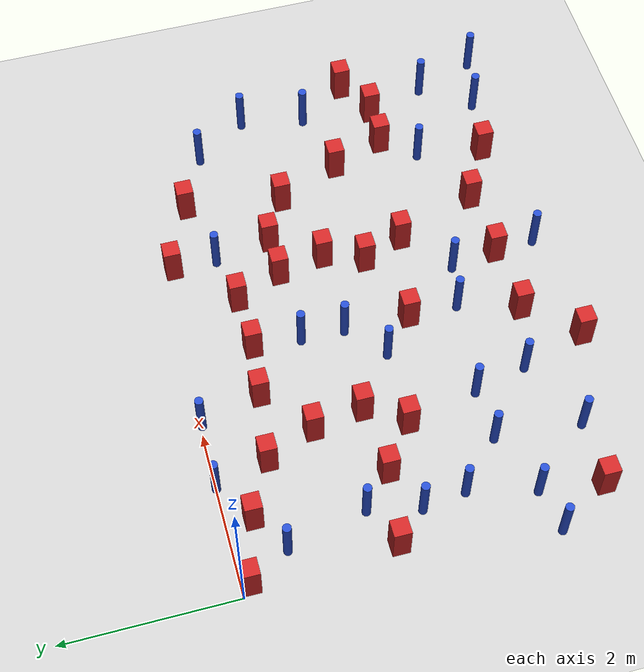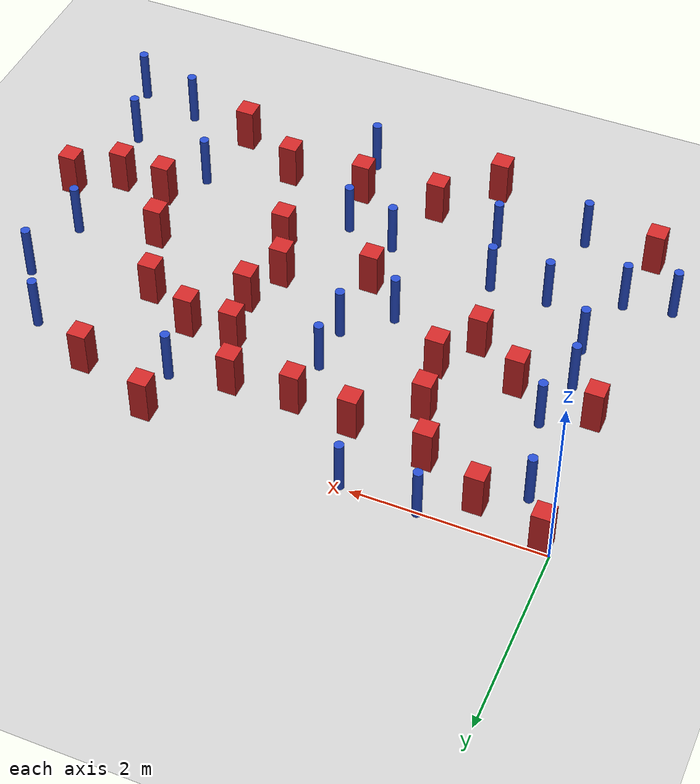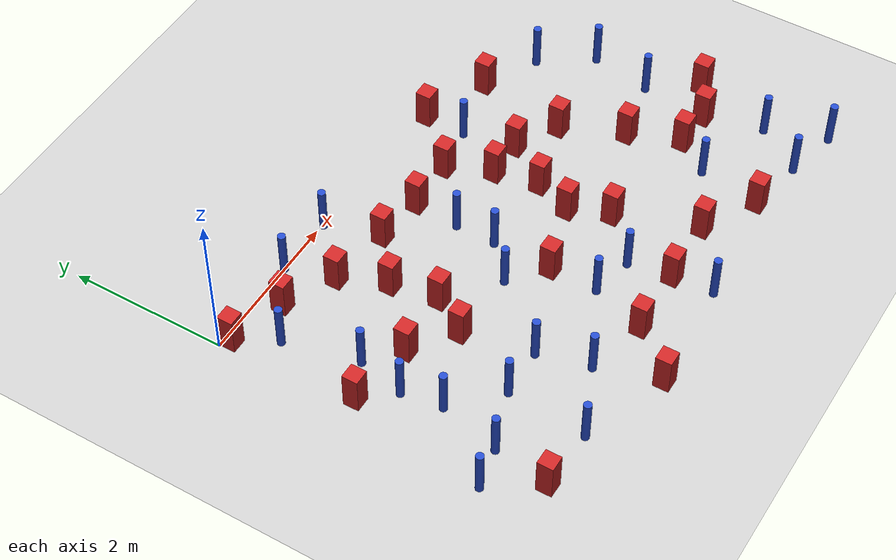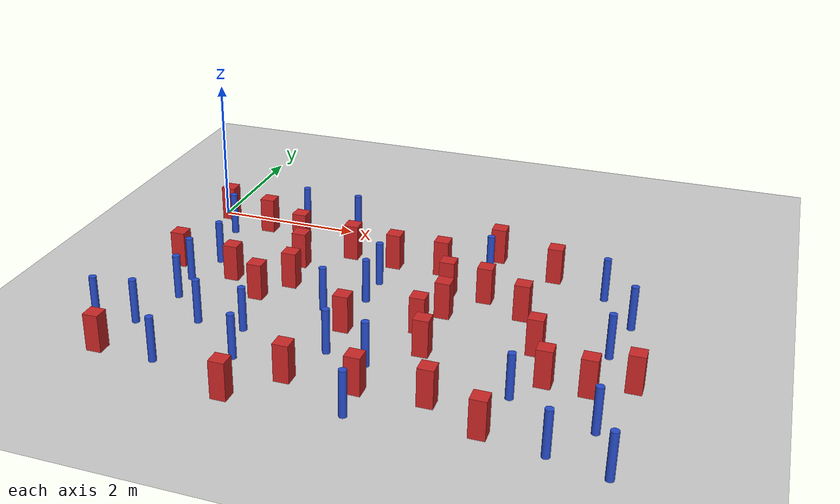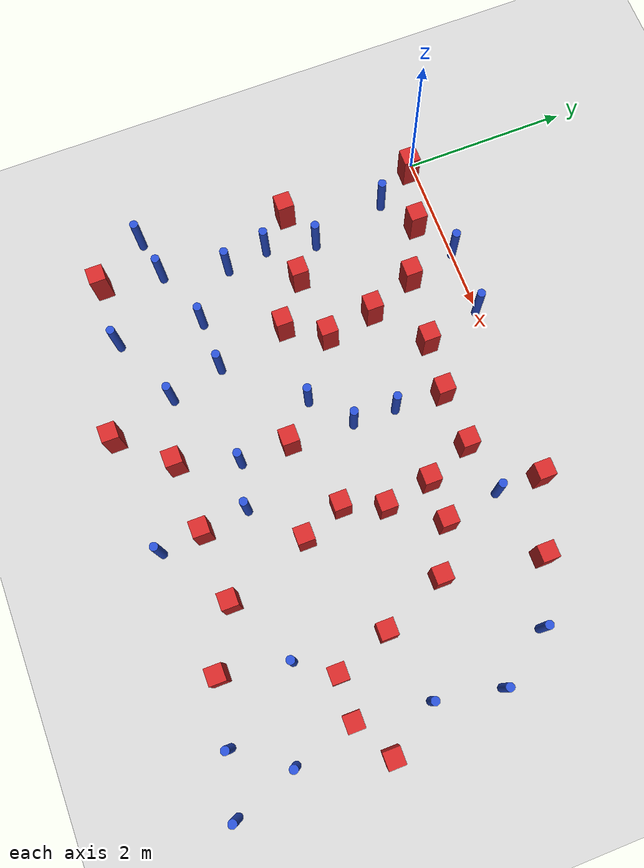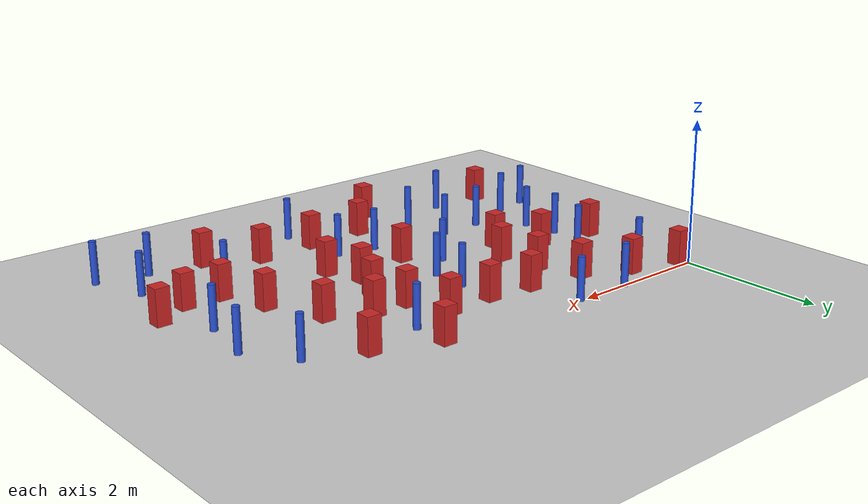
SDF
<sdf version="1.6">
 <world name="default">
  <model name="ground_plane">
   <static>1</static>
   <link name="link">
    <collision name="collision">
     <geometry><plane><normal>0 0 1</normal><size>100 100</size></plane></geometry>
     <surface><friction><ode><mu>100</mu><mu2>50</mu2></ode></friction></surface>
    </collision>
    <visual name="visual">
     <cast_shadows>0</cast_shadows>
     <geometry><plane><normal>0 0 1</normal><size>100 100</size></plane></geometry>
     <material>
      <ambient>1.0 1.0 1.0 1.0</ambient>
      <diffuse>0.8 0.8 0.8 1.0</diffuse>
      <specular>0.01 0.01 0.01 1.000000</specular>
     </material>
    </visual>
   </link>
  </model>
  <model name="square_post_obstacle0">
   <static>true</static>
   <pose>3.85664924931 -1.35110798429 -6.11067671241e-07 -5.50515727128e-06 -8.79689657224e-07 2.37013304536e-05</pose>
   <link name="link">
    <pose>0 0 0.25 0 -0 0</pose>
    <inertial>
     <mass>100</mass>
     <inertia>
      <ixx>0.166667</ixx>
      <ixy>0</ixy>
      <ixz>0</ixz>
      <iyy>0.166667</iyy>
      <iyz>0</iyz>
      <izz>0.166667</izz>
     </inertia>
    </inertial>
    <collision name="collision"><geometry><box><size>.2 .2 .5</size></box></geometry></collision>
    <visual name="visual">
     <geometry><box><size>.2 .2 .5</size></box></geometry>
     <material>
      <script><name>Gazebo/Red</name><uri>file://media/materials/scripts/gazebo.material</uri></script>
     </material>
    </visual>
   </link>
  </model>
  <model name="square_post_obstacle2">
   <static>true</static>
   <pose>0.250513682666 -4.11125388289 -6.11067671241e-07 -5.50515727128e-06 -8.79689657224e-07 2.37013304536e-05</pose>
   <link name="link">
    <pose>0 0 0.25 0 -0 0</pose>
    <inertial>
     <mass>100</mass>
     <inertia>
      <ixx>0.166667</ixx>
      <ixy>0</ixy>
      <ixz>0</ixz>
      <iyy>0.166667</iyy>
      <iyz>0</iyz>
      <izz>0.166667</izz>
     </inertia>
    </inertial>
    <collision name="collision"><geometry><box><size>.2 .2 .5</size></box></geometry></collision>
    <visual name="visual">
     <geometry><box><size>.2 .2 .5</size></box></geometry>
     <material>
      <script><name>Gazebo/Red</name><uri>file://media/materials/scripts/gazebo.material</uri></script>
     </material>
    </visual>
   </link>
  </model>
  <model name="pole_obstacle2">
   <static>true</static>
   <pose>2.89271784255 -3.2723165584 -9.47619616065e-06 5.49618799737e-07 2.36310414051e-07 -1.55090534807e-07</pose>
   <link name="link">
    <pose>0 0 0.3 0 -0 0</pose>
    <inertial>
     <mass>1</mass>
     <inertia><ixx>0.145833</ixx><ixy>0</ixy><ixz>0</ixz><iyy>0.145833</iyy><iyz>0</iyz><izz>0.125</izz></inertia>
    </inertial>
    <collision name="collision">
     <geometry><cylinder><radius>0.05</radius><length>.6</length></cylinder></geometry>
    </collision>
    <visual name="visual">
     <geometry><cylinder><radius>0.05</radius><length>.6</length></cylinder></geometry>
     <material>
      <script><name>Gazebo/Blue</name><uri>file://media/materials/scripts/gazebo.material</uri></script>
     </material>
    </visual>
   </link>
  </model>
  <model name="pole_obstacle3">
   <static>true</static>
   <pose>5.82433210495 -0.820208109112 -9.47619616065e-06 5.49618799737e-07 2.36310414061e-07 -1.550905348e-07</pose>
   <link name="link">
    <pose>0 0 0.3 0 -0 0</pose>
    <inertial>
     <mass>1</mass>
     <inertia><ixx>0.145833</ixx><ixy>0</ixy><ixz>0</ixz><iyy>0.145833</iyy><iyz>0</iyz><izz>0.125</izz></inertia>
    </inertial>
    <collision name="collision">
     <geometry><cylinder><radius>0.05</radius><length>.6</length></cylinder></geometry>
    </collision>
    <visual name="visual">
     <geometry><cylinder><radius>0.05</radius><length>.6</length></cylinder></geometry>
     <material>
      <script><name>Gazebo/Blue</name><uri>file://media/materials/scripts/gazebo.material</uri></script>
     </material>
    </visual>
   </link>
  </model>
  <model name="square_post_obstacle10">
   <static>true</static>
   <pose>3.7774740106 -2.39067848591 -6.11067671241e-07 -5.50515727128e-06 -8.79689657224e-07 2.37013304536e-05</pose>
   <link name="link">
    <pose>0 0 0.25 0 -0 0</pose>
    <inertial>
     <mass>100</mass>
     <inertia>
      <ixx>0.166667</ixx>
      <ixy>0</ixy>
      <ixz>0</ixz>
      <iyy>0.166667</iyy>
      <iyz>0</iyz>
      <izz>0.166667</izz>
     </inertia>
    </inertial>
    <collision name="collision"><geometry><box><size>.2 .2 .5</size></box></geometry></collision>
    <visual name="visual">
     <geometry><box><size>.2 .2 .5</size></box></geometry>
     <material>
      <script><name>Gazebo/Red</name><uri>file://media/materials/scripts/gazebo.material</uri></script>
     </material>
    </visual>
   </link>
  </model>
  <model name="square_post_obstacle16">
   <static>true</static>
   <pose>2.29833616412 -0.73261602999 -6.11067671241e-07 -5.50515727128e-06 -8.79689657224e-07 2.37013304536e-05</pose>
   <link name="link">
    <pose>0 0 0.25 0 -0 0</pose>
    <inertial>
     <mass>100</mass>
     <inertia>
      <ixx>0.166667</ixx>
      <ixy>0</ixy>
      <ixz>0</ixz>
      <iyy>0.166667</iyy>
      <iyz>0</iyz>
      <izz>0.166667</izz>
     </inertia>
    </inertial>
    <collision name="collision"><geometry><box><size>.2 .2 .5</size></box></geometry></collision>
    <visual name="visual">
     <geometry><box><size>.2 .2 .5</size></box></geometry>
     <material>
      <script><name>Gazebo/Red</name><uri>file://media/materials/scripts/gazebo.material</uri></script>
     </material>
    </visual>
   </link>
  </model>
  <model name="square_post_obstacle20">
   <static>true</static>
   <pose>1.71416534256 -1.20629454692 -6.11067671241e-07 -5.50515727128e-06 -8.79689657224e-07 2.37013304536e-05</pose>
   <link name="link">
    <pose>0 0 0.25 0 -0 0</pose>
    <inertial>
     <mass>100</mass>
     <inertia>
      <ixx>0.166667</ixx>
      <ixy>0</ixy>
      <ixz>0</ixz>
      <iyy>0.166667</iyy>
      <iyz>0</iyz>
      <izz>0.166667</izz>
     </inertia>
    </inertial>
    <collision name="collision"><geometry><box><size>.2 .2 .5</size></box></geometry></collision>
    <visual name="visual">
     <geometry><box><size>.2 .2 .5</size></box></geometry>
     <material>
      <script><name>Gazebo/Red</name><uri>file://media/materials/scripts/gazebo.material</uri></script>
     </material>
    </visual>
   </link>
  </model>
  <model name="pole_obstacle16">
   <static>true</static>
   <pose>0.621467730698 -1.51172817444 -9.47619616065e-06 5.49618799738e-07 2.36310414061e-07 -1.55090534801e-07</pose>
   <link name="link">
    <pose>0 0 0.3 0 -0 0</pose>
    <inertial>
     <mass>1</mass>
     <inertia><ixx>0.145833</ixx><ixy>0</ixy><ixz>0</ixz><iyy>0.145833</iyy><iyz>0</iyz><izz>0.125</izz></inertia>
    </inertial>
    <collision name="collision">
     <geometry><cylinder><radius>0.05</radius><length>.6</length></cylinder></geometry>
    </collision>
    <visual name="visual">
     <geometry><cylinder><radius>0.05</radius><length>.6</length></cylinder></geometry>
     <material>
      <script><name>Gazebo/Blue</name><uri>file://media/materials/scripts/gazebo.material</uri></script>
     </material>
    </visual>
   </link>
  </model>
  <model name="pole_obstacle20">
   <static>true</static>
   <pose>6.25953660881 -1.45709852853 -9.47619616065e-06 5.49618799738e-07 2.36310414071e-07 -1.55090534796e-07</pose>
   <link name="link">
    <pose>0 0 0.3 0 -0 0</pose>
    <inertial>
     <mass>1</mass>
     <inertia><ixx>0.145833</ixx><ixy>0</ixy><ixz>0</ixz><iyy>0.145833</iyy><iyz>0</iyz><izz>0.125</izz></inertia>
    </inertial>
    <collision name="collision">
     <geometry><cylinder><radius>0.05</radius><length>.6</length></cylinder></geometry>
    </collision>
    <visual name="visual">
     <geometry><cylinder><radius>0.05</radius><length>.6</length></cylinder></geometry>
     <material>
      <script><name>Gazebo/Blue</name><uri>file://media/materials/scripts/gazebo.material</uri></script>
     </material>
    </visual>
   </link>
  </model>
  <model name="pole_obstacle27">
   <static>true</static>
   <pose>3.55487759577 -4.44809324933 -9.47619616065e-06 5.49618799738e-07 2.3631041406e-07 -1.55090534801e-07</pose>
   <link name="link">
    <pose>0 0 0.3 0 -0 0</pose>
    <inertial>
     <mass>1</mass>
     <inertia><ixx>0.145833</ixx><ixy>0</ixy><ixz>0</ixz><iyy>0.145833</iyy><iyz>0</iyz><izz>0.125</izz></inertia>
    </inertial>
    <collision name="collision">
     <geometry><cylinder><radius>0.05</radius><length>.6</length></cylinder></geometry>
    </collision>
    <visual name="visual">
     <geometry><cylinder><radius>0.05</radius><length>.6</length></cylinder></geometry>
     <material>
      <script><name>Gazebo/Blue</name><uri>file://media/materials/scripts/gazebo.material</uri></script>
     </material>
    </visual>
   </link>
  </model>
  <model name="square_post_obstacle37">
   <static>true</static>
   <pose>3.9798996229 -2.89375919081 -6.11067671241e-07 -5.50515727128e-06 -8.79689657224e-07 2.37013304536e-05</pose>
   <link name="link">
    <pose>0 0 0.25 0 -0 0</pose>
    <inertial>
     <mass>100</mass>
     <inertia>
      <ixx>0.166667</ixx>
      <ixy>0</ixy>
      <ixz>0</ixz>
      <iyy>0.166667</iyy>
      <iyz>0</iyz>
      <izz>0.166667</izz>
     </inertia>
    </inertial>
    <collision name="collision"><geometry><box><size>.2 .2 .5</size></box></geometry></collision>
    <visual name="visual">
     <geometry><box><size>.2 .2 .5</size></box></geometry>
     <material>
      <script><name>Gazebo/Red</name><uri>file://media/materials/scripts/gazebo.material</uri></script>
     </material>
    </visual>
   </link>
  </model>
  <model name="square_post_obstacle39">
   <static>true</static>
   <pose>3.61675518051 -0.790493046692 -6.11067671241e-07 -5.50515727128e-06 -8.79689657224e-07 2.37013304536e-05</pose>
   <link name="link">
    <pose>0 0 0.25 0 -0 0</pose>
    <inertial>
     <mass>100</mass>
     <inertia>
      <ixx>0.166667</ixx>
      <ixy>0</ixy>
      <ixz>0</ixz>
      <iyy>0.166667</iyy>
      <iyz>0</iyz>
      <izz>0.166667</izz>
     </inertia>
    </inertial>
    <collision name="collision"><geometry><box><size>.2 .2 .5</size></box></geometry></collision>
    <visual name="visual">
     <geometry><box><size>.2 .2 .5</size></box></geometry>
     <material>
      <script><name>Gazebo/Red</name><uri>file://media/materials/scripts/gazebo.material</uri></script>
     </material>
    </visual>
   </link>
  </model>
  <model name="square_post_obstacle44">
   <static>true</static>
   <pose>4.36313292251 -1.35339043011 -6.11067671241e-07 -5.50515727128e-06 -8.79689657224e-07 2.37013304536e-05</pose>
   <link name="link">
    <pose>0 0 0.25 0 -0 0</pose>
    <inertial>
     <mass>100</mass>
     <inertia>
      <ixx>0.166667</ixx>
      <ixy>0</ixy>
      <ixz>0</ixz>
      <iyy>0.166667</iyy>
      <iyz>0</iyz>
      <izz>0.166667</izz>
     </inertia>
    </inertial>
    <collision name="collision"><geometry><box><size>.2 .2 .5</size></box></geometry></collision>
    <visual name="visual">
     <geometry><box><size>.2 .2 .5</size></box></geometry>
     <material>
      <script><name>Gazebo/Red</name><uri>file://media/materials/scripts/gazebo.material</uri></script>
     </material>
    </visual>
   </link>
  </model>
  <model name="square_post_obstacle48">
   <static>true</static>
   <pose>5.1028295144 -0.488186815445 -6.11067671241e-07 -5.50515727128e-06 -8.79689657224e-07 2.37013304536e-05</pose>
   <link name="link">
    <pose>0 0 0.25 0 -0 0</pose>
    <inertial>
     <mass>100</mass>
     <inertia>
      <ixx>0.166667</ixx>
      <ixy>0</ixy>
      <ixz>0</ixz>
      <iyy>0.166667</iyy>
      <iyz>0</iyz>
      <izz>0.166667</izz>
     </inertia>
    </inertial>
    <collision name="collision"><geometry><box><size>.2 .2 .5</size></box></geometry></collision>
    <visual name="visual">
     <geometry><box><size>.2 .2 .5</size></box></geometry>
     <material>
      <script><name>Gazebo/Red</name><uri>file://media/materials/scripts/gazebo.material</uri></script>
     </material>
    </visual>
   </link>
  </model>
  <model name="square_post_obstacle49">
   <static>true</static>
   <pose>3.9622819314 -1.91651674383 -6.11067671241e-07 -5.50515727128e-06 -8.79689657224e-07 2.37013304536e-05</pose>
   <link name="link">
    <pose>0 0 0.25 0 -0 0</pose>
    <inertial>
     <mass>100</mass>
     <inertia>
      <ixx>0.166667</ixx>
      <ixy>0</ixy>
      <ixz>0</ixz>
      <iyy>0.166667</iyy>
      <iyz>0</iyz>
      <izz>0.166667</izz>
     </inertia>
    </inertial>
    <collision name="collision"><geometry><box><size>.2 .2 .5</size></box></geometry></collision>
    <visual name="visual">
     <geometry><box><size>.2 .2 .5</size></box></geometry>
     <material>
      <script><name>Gazebo/Red</name><uri>file://media/materials/scripts/gazebo.material</uri></script>
     </material>
    </visual>
   </link>
  </model>
  <model name="pole_obstacle54">
   <static>true</static>
   <pose>1.72298742764 -3.11951811375 -9.47619616065e-06 5.49618799737e-07 2.36310414062e-07 -1.55090534798e-07</pose>
   <link name="link">
    <pose>0 0 0.3 0 -0 0</pose>
    <inertial>
     <mass>1</mass>
     <inertia><ixx>0.145833</ixx><ixy>0</ixy><ixz>0</ixz><iyy>0.145833</iyy><iyz>0</iyz><izz>0.125</izz></inertia>
    </inertial>
    <collision name="collision">
     <geometry><cylinder><radius>0.05</radius><length>.6</length></cylinder></geometry>
    </collision>
    <visual name="visual">
     <geometry><cylinder><radius>0.05</radius><length>.6</length></cylinder></geometry>
     <material>
      <script><name>Gazebo/Blue</name><uri>file://media/materials/scripts/gazebo.material</uri></script>
     </material>
    </visual>
   </link>
  </model>
  <model name="pole_obstacle61">
   <static>true</static>
   <pose>0.398044790497 -0.57646740134 -9.47619616065e-06 5.49618799737e-07 2.36310414061e-07 -1.550905348e-07</pose>
   <link name="link">
    <pose>0 0 0.3 0 -0 0</pose>
    <inertial>
     <mass>1</mass>
     <inertia><ixx>0.145833</ixx><ixy>0</ixy><ixz>0</ixz><iyy>0.145833</iyy><iyz>0</iyz><izz>0.125</izz></inertia>
    </inertial>
    <collision name="collision">
     <geometry><cylinder><radius>0.05</radius><length>.6</length></cylinder></geometry>
    </collision>
    <visual name="visual">
     <geometry><cylinder><radius>0.05</radius><length>.6</length></cylinder></geometry>
     <material>
      <script><name>Gazebo/Blue</name><uri>file://media/materials/scripts/gazebo.material</uri></script>
     </material>
    </visual>
   </link>
  </model>
  <model name="pole_obstacle64">
   <static>true</static>
   <pose>5.19068860532 -3.48503923548 -9.47619616065e-06 5.49618799738e-07 2.36310414051e-07 -1.55090534805e-07</pose>
   <link name="link">
    <pose>0 0 0.3 0 -0 0</pose>
    <inertial>
     <mass>1</mass>
     <inertia><ixx>0.145833</ixx><ixy>0</ixy><ixz>0</ixz><iyy>0.145833</iyy><iyz>0</iyz><izz>0.125</izz></inertia>
    </inertial>
    <collision name="collision">
     <geometry><cylinder><radius>0.05</radius><length>.6</length></cylinder></geometry>
    </collision>
    <visual name="visual">
     <geometry><cylinder><radius>0.05</radius><length>.6</length></cylinder></geometry>
     <material>
      <script><name>Gazebo/Blue</name><uri>file://media/materials/scripts/gazebo.material</uri></script>
     </material>
    </visual>
   </link>
  </model>
  <model name="pole_obstacle75">
   <static>true</static>
   <pose>6.21713978226 -3.82374724399 -9.47619616065e-06 5.49618799738e-07 2.36310414051e-07 -1.55090534805e-07</pose>
   <link name="link">
    <pose>0 0 0.3 0 -0 0</pose>
    <inertial>
     <mass>1</mass>
     <inertia><ixx>0.145833</ixx><ixy>0</ixy><ixz>0</ixz><iyy>0.145833</iyy><iyz>0</iyz><izz>0.125</izz></inertia>
    </inertial>
    <collision name="collision">
     <geometry><cylinder><radius>0.05</radius><length>.6</length></cylinder></geometry>
    </collision>
    <visual name="visual">
     <geometry><cylinder><radius>0.05</radius><length>.6</length></cylinder></geometry>
     <material>
      <script><name>Gazebo/Blue</name><uri>file://media/materials/scripts/gazebo.material</uri></script>
     </material>
    </visual>
   </link>
  </model>
  <model name="pole_obstacle77">
   <static>true</static>
   <pose>1.88730481213 -3.76330289041 -9.47619616065e-06 5.49618799737e-07 2.36310414062e-07 -1.55090534798e-07</pose>
   <link name="link">
    <pose>0 0 0.3 0 -0 0</pose>
    <inertial>
     <mass>1</mass>
     <inertia><ixx>0.145833</ixx><ixy>0</ixy><ixz>0</ixz><iyy>0.145833</iyy><iyz>0</iyz><izz>0.125</izz></inertia>
    </inertial>
    <collision name="collision">
     <geometry><cylinder><radius>0.05</radius><length>.6</length></cylinder></geometry>
    </collision>
    <visual name="visual">
     <geometry><cylinder><radius>0.05</radius><length>.6</length></cylinder></geometry>
     <material>
      <script><name>Gazebo/Blue</name><uri>file://media/materials/scripts/gazebo.material</uri></script>
     </material>
    </visual>
   </link>
  </model>
  <model name="pole_obstacle84">
   <static>true</static>
   <pose>3.4342140231 -3.38713158465 -9.47619616065e-06 5.49618799737e-07 2.36310414051e-07 -1.55090534807e-07</pose>
   <link name="link">
    <pose>0 0 0.3 0 -0 0</pose>
    <inertial>
     <mass>1</mass>
     <inertia><ixx>0.145833</ixx><ixy>0</ixy><ixz>0</ixz><iyy>0.145833</iyy><iyz>0</iyz><izz>0.125</izz></inertia>
    </inertial>
    <collision name="collision">
     <geometry><cylinder><radius>0.05</radius><length>.6</length></cylinder></geometry>
    </collision>
    <visual name="visual">
     <geometry><cylinder><radius>0.05</radius><length>.6</length></cylinder></geometry>
     <material>
      <script><name>Gazebo/Blue</name><uri>file://media/materials/scripts/gazebo.material</uri></script>
     </material>
    </visual>
   </link>
  </model>
  <model name="pole_obstacle86">
   <static>true</static>
   <pose>0.480580952328 -2.11062976343 -9.47619616065e-06 5.49618799738e-07 2.36310414066e-07 -1.55090534797e-07</pose>
   <link name="link">
    <pose>0 0 0.3 0 -0 0</pose>
    <inertial>
     <mass>1</mass>
     <inertia><ixx>0.145833</ixx><ixy>0</ixy><ixz>0</ixz><iyy>0.145833</iyy><iyz>0</iyz><izz>0.125</izz></inertia>
    </inertial>
    <collision name="collision">
     <geometry><cylinder><radius>0.05</radius><length>.6</length></cylinder></geometry>
    </collision>
    <visual name="visual">
     <geometry><cylinder><radius>0.05</radius><length>.6</length></cylinder></geometry>
     <material>
      <script><name>Gazebo/Blue</name><uri>file://media/materials/scripts/gazebo.material</uri></script>
     </material>
    </visual>
   </link>
  </model>
  <model name="pole_obstacle94">
   <static>true</static>
   <pose>4.25179372604 -0.675065789018 -9.47619616065e-06 5.49618799737e-07 2.36310414061e-07 -1.550905348e-07</pose>
   <link name="link">
    <pose>0 0 0.3 0 -0 0</pose>
    <inertial>
     <mass>1</mass>
     <inertia><ixx>0.145833</ixx><ixy>0</ixy><ixz>0</ixz><iyy>0.145833</iyy><iyz>0</iyz><izz>0.125</izz></inertia>
    </inertial>
    <collision name="collision">
     <geometry><cylinder><radius>0.05</radius><length>.6</length></cylinder></geometry>
    </collision>
    <visual name="visual">
     <geometry><cylinder><radius>0.05</radius><length>.6</length></cylinder></geometry>
     <material>
      <script><name>Gazebo/Blue</name><uri>file://media/materials/scripts/gazebo.material</uri></script>
     </material>
    </visual>
   </link>
  </model>
  <model name="square_post_obstacle83">
   <static>true</static>
   <pose>4.35001432819 -3.90132331806 -6.11067671241e-07 -5.50515727128e-06 -8.79689657224e-07 2.37013304536e-05</pose>
   <link name="link">
    <pose>0 0 0.25 0 -0 0</pose>
    <inertial>
     <mass>100</mass>
     <inertia>
      <ixx>0.166667</ixx>
      <ixy>0</ixy>
      <ixz>0</ixz>
      <iyy>0.166667</iyy>
      <iyz>0</iyz>
      <izz>0.166667</izz>
     </inertia>
    </inertial>
    <collision name="collision"><geometry><box><size>.2 .2 .5</size></box></geometry></collision>
    <visual name="visual">
     <geometry><box><size>.2 .2 .5</size></box></geometry>
     <material>
      <script><name>Gazebo/Red</name><uri>file://media/materials/scripts/gazebo.material</uri></script>
     </material>
    </visual>
   </link>
  </model>
  <model name="pole_obstacle100">
   <static>true</static>
   <pose>0.362005513536 -3.39597130784 -9.47619616065e-06 5.49618799738e-07 2.36310414065e-07 -1.55090534798e-07</pose>
   <link name="link">
    <pose>0 0 0.3 0 -0 0</pose>
    <inertial>
     <mass>1</mass>
     <inertia><ixx>0.145833</ixx><ixy>0</ixy><ixz>0</ixz><iyy>0.145833</iyy><iyz>0</iyz><izz>0.125</izz></inertia>
    </inertial>
    <collision name="collision">
     <geometry><cylinder><radius>0.05</radius><length>.6</length></cylinder></geometry>
    </collision>
    <visual name="visual">
     <geometry><cylinder><radius>0.05</radius><length>.6</length></cylinder></geometry>
     <material>
      <script><name>Gazebo/Blue</name><uri>file://media/materials/scripts/gazebo.material</uri></script>
     </material>
    </visual>
   </link>
  </model>
  <model name="square_post_obstacle93">
   <static>true</static>
   <pose>1.81769764011 -1.80596938682 -6.11067671241e-07 -5.50515727128e-06 -8.79689657224e-07 2.37013304536e-05</pose>
   <link name="link">
    <pose>0 0 0.25 0 -0 0</pose>
    <inertial>
     <mass>100</mass>
     <inertia>
      <ixx>0.166667</ixx>
      <ixy>0</ixy>
      <ixz>0</ixz>
      <iyy>0.166667</iyy>
      <iyz>0</iyz>
      <izz>0.166667</izz>
     </inertia>
    </inertial>
    <collision name="collision"><geometry><box><size>.2 .2 .5</size></box></geometry></collision>
    <visual name="visual">
     <geometry><box><size>.2 .2 .5</size></box></geometry>
     <material>
      <script><name>Gazebo/Red</name><uri>file://media/materials/scripts/gazebo.material</uri></script>
     </material>
    </visual>
   </link>
  </model>
  <model name="square_post_obstacle98">
   <static>true</static>
   <pose>5.49128685154 -3.06839703189 -6.11067671241e-07 -5.50515727128e-06 -8.79689657224e-07 2.37013304536e-05</pose>
   <link name="link">
    <pose>0 0 0.25 0 -0 0</pose>
    <inertial>
     <mass>100</mass>
     <inertia>
      <ixx>0.166667</ixx>
      <ixy>0</ixy>
      <ixz>0</ixz>
      <iyy>0.166667</iyy>
      <iyz>0</iyz>
      <izz>0.166667</izz>
     </inertia>
    </inertial>
    <collision name="collision"><geometry><box><size>.2 .2 .5</size></box></geometry></collision>
    <visual name="visual">
     <geometry><box><size>.2 .2 .5</size></box></geometry>
     <material>
      <script><name>Gazebo/Red</name><uri>file://media/materials/scripts/gazebo.material</uri></script>
     </material>
    </visual>
   </link>
  </model>
  <model name="pole_obstacle111">
   <static>true</static>
   <pose>-0.143401656528 -3.49465033572 -9.4761961606e-06 5.49618799729e-07 2.36310413997e-07 -1.55090534825e-07</pose>
   <link name="link">
    <pose>0 0 0.3 0 -0 0</pose>
    <inertial>
     <mass>1</mass>
     <inertia><ixx>0.145833</ixx><ixy>0</ixy><ixz>0</ixz><iyy>0.145833</iyy><iyz>0</iyz><izz>0.125</izz></inertia>
    </inertial>
    <collision name="collision">
     <geometry><cylinder><radius>0.05</radius><length>.6</length></cylinder></geometry>
    </collision>
    <visual name="visual">
     <geometry><cylinder><radius>0.05</radius><length>.6</length></cylinder></geometry>
     <material>
      <script><name>Gazebo/Blue</name><uri>file://media/materials/scripts/gazebo.material</uri></script>
     </material>
    </visual>
   </link>
  </model>
  <model name="pole_obstacle118">
   <static>true</static>
   <pose>6.48468796236 -4.57315188099 -9.47619616065e-06 5.49618799737e-07 2.36310414037e-07 -1.55090534814e-07</pose>
   <link name="link">
    <pose>0 0 0.3 0 -0 0</pose>
    <inertial>
     <mass>1</mass>
     <inertia><ixx>0.145833</ixx><ixy>0</ixy><ixz>0</ixz><iyy>0.145833</iyy><iyz>0</iyz><izz>0.125</izz></inertia>
    </inertial>
    <collision name="collision">
     <geometry><cylinder><radius>0.05</radius><length>.6</length></cylinder></geometry>
    </collision>
    <visual name="visual">
     <geometry><cylinder><radius>0.05</radius><length>.6</length></cylinder></geometry>
     <material>
      <script><name>Gazebo/Blue</name><uri>file://media/materials/scripts/gazebo.material</uri></script>
     </material>
    </visual>
   </link>
  </model>
  <model name="pole_obstacle121">
   <static>true</static>
   <pose>1.02161733226 -4.14560495235 -9.47619616065e-06 5.49618799737e-07 2.36310414059e-07 -1.550905348e-07</pose>
   <link name="link">
    <pose>0 0 0.3 0 -0 0</pose>
    <inertial>
     <mass>1</mass>
     <inertia><ixx>0.145833</ixx><ixy>0</ixy><ixz>0</ixz><iyy>0.145833</iyy><iyz>0</iyz><izz>0.125</izz></inertia>
    </inertial>
    <collision name="collision">
     <geometry><cylinder><radius>0.05</radius><length>.6</length></cylinder></geometry>
    </collision>
    <visual name="visual">
     <geometry><cylinder><radius>0.05</radius><length>.6</length></cylinder></geometry>
     <material>
      <script><name>Gazebo/Blue</name><uri>file://media/materials/scripts/gazebo.material</uri></script>
     </material>
    </visual>
   </link>
  </model>
  <model name="pole_obstacle131">
   <static>true</static>
   <pose>1.3116827945 -0.000944110392771 -9.47619616065e-06 5.49618799737e-07 2.36310414063e-07 -1.550905348e-07</pose>
   <link name="link">
    <pose>0 0 0.3 0 -0 0</pose>
    <inertial>
     <mass>1</mass>
     <inertia><ixx>0.145833</ixx><ixy>0</ixy><ixz>0</ixz><iyy>0.145833</iyy><iyz>0</iyz><izz>0.125</izz></inertia>
    </inertial>
    <collision name="collision">
     <geometry><cylinder><radius>0.05</radius><length>.6</length></cylinder></geometry>
    </collision>
    <visual name="visual">
     <geometry><cylinder><radius>0.05</radius><length>.6</length></cylinder></geometry>
     <material>
      <script><name>Gazebo/Blue</name><uri>file://media/materials/scripts/gazebo.material</uri></script>
     </material>
    </visual>
   </link>
  </model>
  <model name="pole_obstacle132">
   <static>true</static>
   <pose>1.10410771584 -3.13283000794 -9.47619616065e-06 5.49618799737e-07 2.36310414062e-07 -1.55090534798e-07</pose>
   <link name="link">
    <pose>0 0 0.3 0 -0 0</pose>
    <inertial>
     <mass>1</mass>
     <inertia><ixx>0.145833</ixx><ixy>0</ixy><ixz>0</ixz><iyy>0.145833</iyy><iyz>0</iyz><izz>0.125</izz></inertia>
    </inertial>
    <collision name="collision">
     <geometry><cylinder><radius>0.05</radius><length>.6</length></cylinder></geometry>
    </collision>
    <visual name="visual">
     <geometry><cylinder><radius>0.05</radius><length>.6</length></cylinder></geometry>
     <material>
      <script><name>Gazebo/Blue</name><uri>file://media/materials/scripts/gazebo.material</uri></script>
     </material>
    </visual>
   </link>
  </model>
  <model name="square_post_obstacle120">
   <static>true</static>
   <pose>1.47430545765 -0.622053370121 -6.11067671241e-07 -5.50515727128e-06 -8.79689657224e-07 2.37013304536e-05</pose>
   <link name="link">
    <pose>0 0 0.25 0 -0 0</pose>
    <inertial>
     <mass>100</mass>
     <inertia>
      <ixx>0.166667</ixx>
      <ixy>0</ixy>
      <ixz>0</ixz>
      <iyy>0.166667</iyy>
      <iyz>0</iyz>
      <izz>0.166667</izz>
     </inertia>
    </inertial>
    <collision name="collision"><geometry><box><size>.2 .2 .5</size></box></geometry></collision>
    <visual name="visual">
     <geometry><box><size>.2 .2 .5</size></box></geometry>
     <material>
      <script><name>Gazebo/Red</name><uri>file://media/materials/scripts/gazebo.material</uri></script>
     </material>
    </visual>
   </link>
  </model>
  <model name="square_post_obstacle126">
   <static>true</static>
   <pose>2.12647073333 -4.54332857427 -6.11067671241e-07 -5.50515727128e-06 -8.79689657224e-07 2.37013304536e-05</pose>
   <link name="link">
    <pose>0 0 0.25 0 -0 0</pose>
    <inertial>
     <mass>100</mass>
     <inertia>
      <ixx>0.166667</ixx>
      <ixy>0</ixy>
      <ixz>0</ixz>
      <iyy>0.166667</iyy>
      <iyz>0</iyz>
      <izz>0.166667</izz>
     </inertia>
    </inertial>
    <collision name="collision"><geometry><box><size>.2 .2 .5</size></box></geometry></collision>
    <visual name="visual">
     <geometry><box><size>.2 .2 .5</size></box></geometry>
     <material>
      <script><name>Gazebo/Red</name><uri>file://media/materials/scripts/gazebo.material</uri></script>
     </material>
    </visual>
   </link>
  </model>
  <model name="square_post_obstacle131">
   <static>true</static>
   <pose>5.25086008229 -2.41911077688 -6.11067671241e-07 -5.50515727128e-06 -8.79689657224e-07 2.37013304536e-05</pose>
   <link name="link">
    <pose>0 0 0.25 0 -0 0</pose>
    <inertial>
     <mass>100</mass>
     <inertia>
      <ixx>0.166667</ixx>
      <ixy>0</ixy>
      <ixz>0</ixz>
      <iyy>0.166667</iyy>
      <iyz>0</iyz>
      <izz>0.166667</izz>
     </inertia>
    </inertial>
    <collision name="collision"><geometry><box><size>.2 .2 .5</size></box></geometry></collision>
    <visual name="visual">
     <geometry><box><size>.2 .2 .5</size></box></geometry>
     <material>
      <script><name>Gazebo/Red</name><uri>file://media/materials/scripts/gazebo.material</uri></script>
     </material>
    </visual>
   </link>
  </model>
  <model name="square_post_obstacle133">
   <static>true</static>
   <pose>4.25389644317 -0.149822215069 -6.11067671241e-07 -5.50515727128e-06 -8.79689657224e-07 2.37013304536e-05</pose>
   <link name="link">
    <pose>0 0 0.25 0 -0 0</pose>
    <inertial>
     <mass>100</mass>
     <inertia>
      <ixx>0.166667</ixx>
      <ixy>0</ixy>
      <ixz>0</ixz>
      <iyy>0.166667</iyy>
      <iyz>0</iyz>
      <izz>0.166667</izz>
     </inertia>
    </inertial>
    <collision name="collision"><geometry><box><size>.2 .2 .5</size></box></geometry></collision>
    <visual name="visual">
     <geometry><box><size>.2 .2 .5</size></box></geometry>
     <material>
      <script><name>Gazebo/Red</name><uri>file://media/materials/scripts/gazebo.material</uri></script>
     </material>
    </visual>
   </link>
  </model>
  <model name="square_post_obstacle140">
   <static>true</static>
   <pose>2.64886491427 -3.96974051525 -6.11067671241e-07 -5.50515727128e-06 -8.79689657224e-07 2.37013304536e-05</pose>
   <link name="link">
    <pose>0 0 0.25 0 -0 0</pose>
    <inertial>
     <mass>100</mass>
     <inertia>
      <ixx>0.166667</ixx>
      <ixy>0</ixy>
      <ixz>0</ixz>
      <iyy>0.166667</iyy>
      <iyz>0</iyz>
      <izz>0.166667</izz>
     </inertia>
    </inertial>
    <collision name="collision"><geometry><box><size>.2 .2 .5</size></box></geometry></collision>
    <visual name="visual">
     <geometry><box><size>.2 .2 .5</size></box></geometry>
     <material>
      <script><name>Gazebo/Red</name><uri>file://media/materials/scripts/gazebo.material</uri></script>
     </material>
    </visual>
   </link>
  </model>
  <model name="pole_obstacle154">
   <static>true</static>
   <pose>0.557681851383 -2.62249120975 -9.47619616065e-06 5.49618799737e-07 2.36310414066e-07 -1.55090534797e-07</pose>
   <link name="link">
    <pose>0 0 0.3 0 -0 0</pose>
    <inertial>
     <mass>1</mass>
     <inertia><ixx>0.145833</ixx><ixy>0</ixy><ixz>0</ixz><iyy>0.145833</iyy><iyz>0</iyz><izz>0.125</izz></inertia>
    </inertial>
    <collision name="collision">
     <geometry><cylinder><radius>0.05</radius><length>.6</length></cylinder></geometry>
    </collision>
    <visual name="visual">
     <geometry><cylinder><radius>0.05</radius><length>.6</length></cylinder></geometry>
     <material>
      <script><name>Gazebo/Blue</name><uri>file://media/materials/scripts/gazebo.material</uri></script>
     </material>
    </visual>
   </link>
  </model>
  <model name="square_post_obstacle144">
   <static>true</static>
   <pose>2.88001438313 -2.66979761605 -6.11067671241e-07 -5.50515727128e-06 -8.79689657224e-07 2.37013304536e-05</pose>
   <link name="link">
    <pose>0 0 0.25 0 -0 0</pose>
    <inertial>
     <mass>100</mass>
     <inertia>
      <ixx>0.166667</ixx>
      <ixy>0</ixy>
      <ixz>0</ixz>
      <iyy>0.166667</iyy>
      <iyz>0</iyz>
      <izz>0.166667</izz>
     </inertia>
    </inertial>
    <collision name="collision"><geometry><box><size>.2 .2 .5</size></box></geometry></collision>
    <visual name="visual">
     <geometry><box><size>.2 .2 .5</size></box></geometry>
     <material>
      <script><name>Gazebo/Red</name><uri>file://media/materials/scripts/gazebo.material</uri></script>
     </material>
    </visual>
   </link>
  </model>
  <model name="square_post_obstacle145">
   <static>true</static>
   <pose>2.94193868062 -0.808156109901 -6.11067671241e-07 -5.50515727128e-06 -8.79689657224e-07 2.37013304536e-05</pose>
   <link name="link">
    <pose>0 0 0.25 0 -0 0</pose>
    <inertial>
     <mass>100</mass>
     <inertia>
      <ixx>0.166667</ixx>
      <ixy>0</ixy>
      <ixz>0</ixz>
      <iyy>0.166667</iyy>
      <iyz>0</iyz>
      <izz>0.166667</izz>
     </inertia>
    </inertial>
    <collision name="collision"><geometry><box><size>.2 .2 .5</size></box></geometry></collision>
    <visual name="visual">
     <geometry><box><size>.2 .2 .5</size></box></geometry>
     <material>
      <script><name>Gazebo/Red</name><uri>file://media/materials/scripts/gazebo.material</uri></script>
     </material>
    </visual>
   </link>
  </model>
  <model name="pole_obstacle166">
   <static>true</static>
   <pose>2.46574942592 -2.29283833538 -9.47619616065e-06 5.49618799737e-07 2.36310414051e-07 -1.55090534807e-07</pose>
   <link name="link">
    <pose>0 0 0.3 0 -0 0</pose>
    <inertial>
     <mass>1</mass>
     <inertia><ixx>0.145833</ixx><ixy>0</ixy><ixz>0</ixz><iyy>0.145833</iyy><iyz>0</iyz><izz>0.125</izz></inertia>
    </inertial>
    <collision name="collision">
     <geometry><cylinder><radius>0.05</radius><length>.6</length></cylinder></geometry>
    </collision>
    <visual name="visual">
     <geometry><cylinder><radius>0.05</radius><length>.6</length></cylinder></geometry>
     <material>
      <script><name>Gazebo/Blue</name><uri>file://media/materials/scripts/gazebo.material</uri></script>
     </material>
    </visual>
   </link>
  </model>
  <model name="pole_obstacle167">
   <static>true</static>
   <pose>6.1110213191 -2.23304803622 -9.47619616065e-06 5.49618799738e-07 2.36310414051e-07 -1.55090534805e-07</pose>
   <link name="link">
    <pose>0 0 0.3 0 -0 0</pose>
    <inertial>
     <mass>1</mass>
     <inertia><ixx>0.145833</ixx><ixy>0</ixy><ixz>0</ixz><iyy>0.145833</iyy><iyz>0</iyz><izz>0.125</izz></inertia>
    </inertial>
    <collision name="collision">
     <geometry><cylinder><radius>0.05</radius><length>.6</length></cylinder></geometry>
    </collision>
    <visual name="visual">
     <geometry><cylinder><radius>0.05</radius><length>.6</length></cylinder></geometry>
     <material>
      <script><name>Gazebo/Blue</name><uri>file://media/materials/scripts/gazebo.material</uri></script>
     </material>
    </visual>
   </link>
  </model>
  <model name="square_post_obstacle162">
   <static>true</static>
   <pose>0.997220632576 -1.86774677481 -6.11067671241e-07 -5.50515727128e-06 -8.79689657224e-07 2.37013304536e-05</pose>
   <link name="link">
    <pose>0 0 0.25 0 -0 0</pose>
    <inertial>
     <mass>100</mass>
     <inertia>
      <ixx>0.166667</ixx>
      <ixy>0</ixy>
      <ixz>0</ixz>
      <iyy>0.166667</iyy>
      <iyz>0</iyz>
      <izz>0.166667</izz>
     </inertia>
    </inertial>
    <collision name="collision"><geometry><box><size>.2 .2 .5</size></box></geometry></collision>
    <visual name="visual">
     <geometry><box><size>.2 .2 .5</size></box></geometry>
     <material>
      <script><name>Gazebo/Red</name><uri>file://media/materials/scripts/gazebo.material</uri></script>
     </material>
    </visual>
   </link>
  </model>
  <model name="pole_obstacle176">
   <static>true</static>
   <pose>2.11208730198 -0.021920106829 -9.47619616065e-06 5.49618799738e-07 2.36310414069e-07 -1.55090534796e-07</pose>
   <link name="link">
    <pose>0 0 0.3 0 -0 0</pose>
    <inertial>
     <mass>1</mass>
     <inertia><ixx>0.145833</ixx><ixy>0</ixy><ixz>0</ixz><iyy>0.145833</iyy><iyz>0</iyz><izz>0.125</izz></inertia>
    </inertial>
    <collision name="collision">
     <geometry><cylinder><radius>0.05</radius><length>.6</length></cylinder></geometry>
    </collision>
    <visual name="visual">
     <geometry><cylinder><radius>0.05</radius><length>.6</length></cylinder></geometry>
     <material>
      <script><name>Gazebo/Blue</name><uri>file://media/materials/scripts/gazebo.material</uri></script>
     </material>
    </visual>
   </link>
  </model>
  <model name="square_post_obstacle169">
   <static>true</static>
   <pose>5.04344316182 -4.28019583097 -6.11067671241e-07 -5.50515727128e-06 -8.79689657224e-07 2.37013304536e-05</pose>
   <link name="link">
    <pose>0 0 0.25 0 -0 0</pose>
    <inertial>
     <mass>100</mass>
     <inertia>
      <ixx>0.166667</ixx>
      <ixy>0</ixy>
      <ixz>0</ixz>
      <iyy>0.166667</iyy>
      <iyz>0</iyz>
      <izz>0.166667</izz>
     </inertia>
    </inertial>
    <collision name="collision"><geometry><box><size>.2 .2 .5</size></box></geometry></collision>
    <visual name="visual">
     <geometry><box><size>.2 .2 .5</size></box></geometry>
     <material>
      <script><name>Gazebo/Red</name><uri>file://media/materials/scripts/gazebo.material</uri></script>
     </material>
    </visual>
   </link>
  </model>
  <model name="pole_obstacle187">
   <static>true</static>
   <pose>5.79773034991 -4.41526029569 -9.47619616065e-06 5.49618799737e-07 2.36310414037e-07 -1.55090534814e-07</pose>
   <link name="link">
    <pose>0 0 0.3 0 -0 0</pose>
    <inertial>
     <mass>1</mass>
     <inertia><ixx>0.145833</ixx><ixy>0</ixy><ixz>0</ixz><iyy>0.145833</iyy><iyz>0</iyz><izz>0.125</izz></inertia>
    </inertial>
    <collision name="collision">
     <geometry><cylinder><radius>0.05</radius><length>.6</length></cylinder></geometry>
    </collision>
    <visual name="visual">
     <geometry><cylinder><radius>0.05</radius><length>.6</length></cylinder></geometry>
     <material>
      <script><name>Gazebo/Blue</name><uri>file://media/materials/scripts/gazebo.material</uri></script>
     </material>
    </visual>
   </link>
  </model>
  <model name="square_post_obstacle181">
   <static>true</static>
   <pose>4.91603032571 -1.64558592515 -6.11067671241e-07 -5.50515727128e-06 -8.79689657224e-07 2.37013304536e-05</pose>
   <link name="link">
    <pose>0 0 0.25 0 -0 0</pose>
    <inertial>
     <mass>100</mass>
     <inertia>
      <ixx>0.166667</ixx>
      <ixy>0</ixy>
      <ixz>0</ixz>
      <iyy>0.166667</iyy>
      <iyz>0</iyz>
      <izz>0.166667</izz>
     </inertia>
    </inertial>
    <collision name="collision"><geometry><box><size>.2 .2 .5</size></box></geometry></collision>
    <visual name="visual">
     <geometry><box><size>.2 .2 .5</size></box></geometry>
     <material>
      <script><name>Gazebo/Red</name><uri>file://media/materials/scripts/gazebo.material</uri></script>
     </material>
    </visual>
   </link>
  </model>
  <model name="square_post_obstacle183">
   <static>true</static>
   <pose>3.50450771566 -3.93605021503 -6.11067671241e-07 -5.50515727128e-06 -8.79689657224e-07 2.37013304536e-05</pose>
   <link name="link">
    <pose>0 0 0.25 0 -0 0</pose>
    <inertial>
     <mass>100</mass>
     <inertia>
      <ixx>0.166667</ixx>
      <ixy>0</ixy>
      <ixz>0</ixz>
      <iyy>0.166667</iyy>
      <iyz>0</iyz>
      <izz>0.166667</izz>
     </inertia>
    </inertial>
    <collision name="collision"><geometry><box><size>.2 .2 .5</size></box></geometry></collision>
    <visual name="visual">
     <geometry><box><size>.2 .2 .5</size></box></geometry>
     <material>
      <script><name>Gazebo/Red</name><uri>file://media/materials/scripts/gazebo.material</uri></script>
     </material>
    </visual>
   </link>
  </model>
  <model name="square_post_obstacle185">
   <static>true</static>
   <pose>0.837693374786 -0.303358180672 -6.11067671241e-07 -5.50515727128e-06 -8.79689657224e-07 2.37013304536e-05</pose>
   <link name="link">
    <pose>0 0 0.25 0 -0 0</pose>
    <inertial>
     <mass>100</mass>
     <inertia>
      <ixx>0.166667</ixx>
      <ixy>0</ixy>
      <ixz>0</ixz>
      <iyy>0.166667</iyy>
      <iyz>0</iyz>
      <izz>0.166667</izz>
     </inertia>
    </inertial>
    <collision name="collision"><geometry><box><size>.2 .2 .5</size></box></geometry></collision>
    <visual name="visual">
     <geometry><box><size>.2 .2 .5</size></box></geometry>
     <material>
      <script><name>Gazebo/Red</name><uri>file://media/materials/scripts/gazebo.material</uri></script>
     </material>
    </visual>
   </link>
  </model>
  <model name="square_post_obstacle188">
   <static>true</static>
   <pose>6.0079693658 -3.09093079756 -6.11067671241e-07 -5.50515727128e-06 -8.79689657224e-07 2.37013304536e-05</pose>
   <link name="link">
    <pose>0 0 0.25 0 -0 0</pose>
    <inertial>
     <mass>100</mass>
     <inertia>
      <ixx>0.166667</ixx>
      <ixy>0</ixy>
      <ixz>0</ixz>
      <iyy>0.166667</iyy>
      <iyz>0</iyz>
      <izz>0.166667</izz>
     </inertia>
    </inertial>
    <collision name="collision"><geometry><box><size>.2 .2 .5</size></box></geometry></collision>
    <visual name="visual">
     <geometry><box><size>.2 .2 .5</size></box></geometry>
     <material>
      <script><name>Gazebo/Red</name><uri>file://media/materials/scripts/gazebo.material</uri></script>
     </material>
    </visual>
   </link>
  </model>
  <model name="pole_obstacle193">
   <static>true</static>
   <pose>2.90724322856 -1.89860086156 -9.47619616065e-06 5.49618799737e-07 2.36310414072e-07 -1.55090534793e-07</pose>
   <link name="link">
    <pose>0 0 0.3 0 -0 0</pose>
    <inertial>
     <mass>1</mass>
     <inertia><ixx>0.145833</ixx><ixy>0</ixy><ixz>0</ixz><iyy>0.145833</iyy><iyz>0</iyz><izz>0.125</izz></inertia>
    </inertial>
    <collision name="collision">
     <geometry><cylinder><radius>0.05</radius><length>.6</length></cylinder></geometry>
    </collision>
    <visual name="visual">
     <geometry><cylinder><radius>0.05</radius><length>.6</length></cylinder></geometry>
     <material>
      <script><name>Gazebo/Blue</name><uri>file://media/materials/scripts/gazebo.material</uri></script>
     </material>
    </visual>
   </link>
  </model>
  <model name="pole_obstacle202">
   <static>true</static>
   <pose>2.91370085281 -1.38018091048 -9.47619616065e-06 5.49618799737e-07 2.36310414072e-07 -1.55090534793e-07</pose>
   <link name="link">
    <pose>0 0 0.3 0 -0 0</pose>
    <inertial>
     <mass>1</mass>
     <inertia><ixx>0.145833</ixx><ixy>0</ixy><ixz>0</ixz><iyy>0.145833</iyy><iyz>0</iyz><izz>0.125</izz></inertia>
    </inertial>
    <collision name="collision">
     <geometry><cylinder><radius>0.05</radius><length>.6</length></cylinder></geometry>
    </collision>
    <visual name="visual">
     <geometry><cylinder><radius>0.05</radius><length>.6</length></cylinder></geometry>
     <material>
      <script><name>Gazebo/Blue</name><uri>file://media/materials/scripts/gazebo.material</uri></script>
     </material>
    </visual>
   </link>
  </model>
  <model name="square_post_obstacle207">
   <static>true</static>
   <pose>0.143845378061 -1.73937918357 -6.11067671241e-07 -5.50515727128e-06 -8.79689657224e-07 2.37013304536e-05</pose>
   <link name="link">
    <pose>0 0 0.25 0 -0 0</pose>
    <inertial>
     <mass>100</mass>
     <inertia>
      <ixx>0.166667</ixx>
      <ixy>0</ixy>
      <ixz>0</ixz>
      <iyy>0.166667</iyy>
      <iyz>0</iyz>
      <izz>0.166667</izz>
     </inertia>
    </inertial>
    <collision name="collision"><geometry><box><size>.2 .2 .5</size></box></geometry></collision>
    <visual name="visual">
     <geometry><box><size>.2 .2 .5</size></box></geometry>
     <material>
      <script><name>Gazebo/Red</name><uri>file://media/materials/scripts/gazebo.material</uri></script>
     </material>
    </visual>
   </link>
  </model>
  <model name="square_post_obstacle211">
   <static>true</static>
   <pose>6.49122534476 -2.83076430718 -6.11067671241e-07 -5.50515727128e-06 -8.79689657224e-07 2.37013304536e-05</pose>
   <link name="link">
    <pose>0 0 0.25 0 -0 0</pose>
    <inertial>
     <mass>100</mass>
     <inertia>
      <ixx>0.166667</ixx>
      <ixy>0</ixy>
      <ixz>0</ixz>
      <iyy>0.166667</iyy>
      <iyz>0</iyz>
      <izz>0.166667</izz>
     </inertia>
    </inertial>
    <collision name="collision"><geometry><box><size>.2 .2 .5</size></box></geometry></collision>
    <visual name="visual">
     <geometry><box><size>.2 .2 .5</size></box></geometry>
     <material>
      <script><name>Gazebo/Red</name><uri>file://media/materials/scripts/gazebo.material</uri></script>
     </material>
    </visual>
   </link>
  </model>
  <model name="square_post_obstacle214">
   <static>true</static>
   <pose>1.52547821538 -2.25435119027 -6.11067671241e-07 -5.50515727128e-06 -8.79689657224e-07 2.37013304536e-05</pose>
   <link name="link">
    <pose>0 0 0.25 0 -0 0</pose>
    <inertial>
     <mass>100</mass>
     <inertia>
      <ixx>0.166667</ixx>
      <ixy>0</ixy>
      <ixz>0</ixz>
      <iyy>0.166667</iyy>
      <iyz>0</iyz>
      <izz>0.166667</izz>
     </inertia>
    </inertial>
    <collision name="collision"><geometry><box><size>.2 .2 .5</size></box></geometry></collision>
    <visual name="visual">
     <geometry><box><size>.2 .2 .5</size></box></geometry>
     <material>
      <script><name>Gazebo/Red</name><uri>file://media/materials/scripts/gazebo.material</uri></script>
     </material>
    </visual>
   </link>
  </model>
  <model name="square_post_obstacle219">
   <static>true</static>
   <pose>0.114231186627 -0.102274119447 -6.11067671241e-07 -5.50515727128e-06 -8.79689657224e-07 2.37013304536e-05</pose>
   <link name="link">
    <pose>0 0 0.25 0 -0 0</pose>
    <inertial>
     <mass>100</mass>
     <inertia>
      <ixx>0.166667</ixx>
      <ixy>0</ixy>
      <ixz>0</ixz>
      <iyy>0.166667</iyy>
      <iyz>0</iyz>
      <izz>0.166667</izz>
     </inertia>
    </inertial>
    <collision name="collision"><geometry><box><size>.2 .2 .5</size></box></geometry></collision>
    <visual name="visual">
     <geometry><box><size>.2 .2 .5</size></box></geometry>
     <material>
      <script><name>Gazebo/Red</name><uri>file://media/materials/scripts/gazebo.material</uri></script>
     </material>
    </visual>
   </link>
  </model>
 </world>
</sdf>
